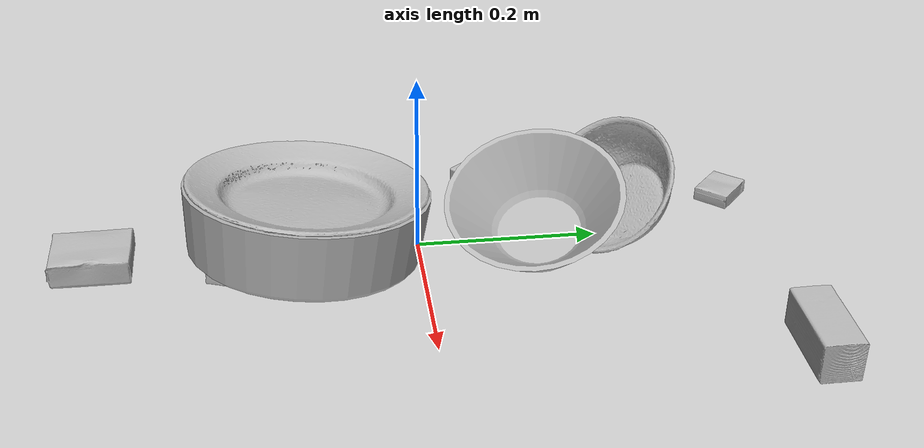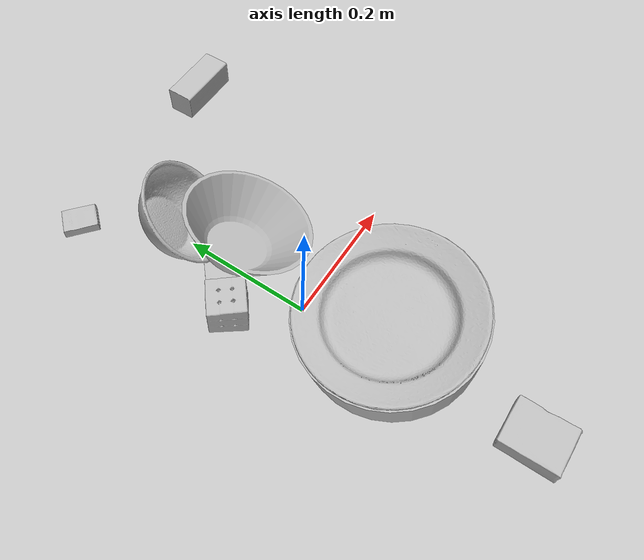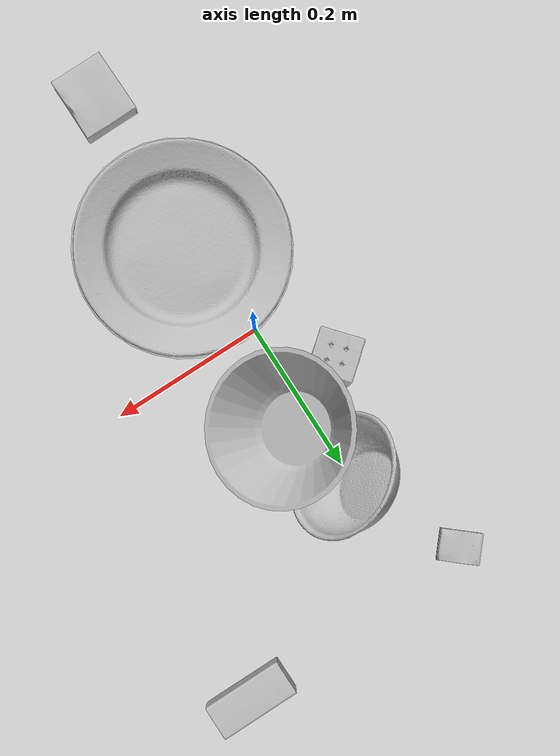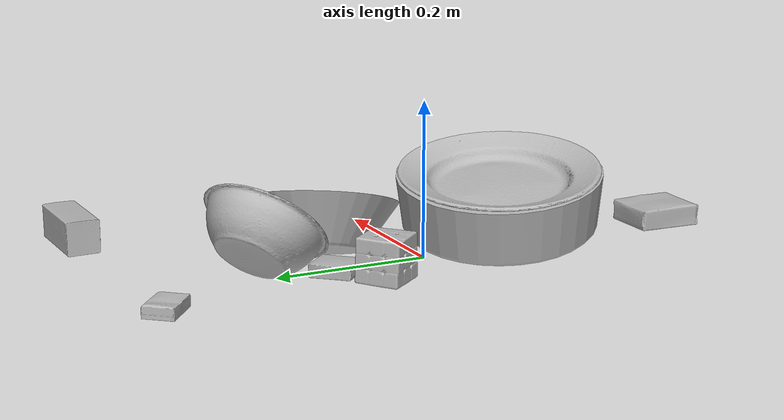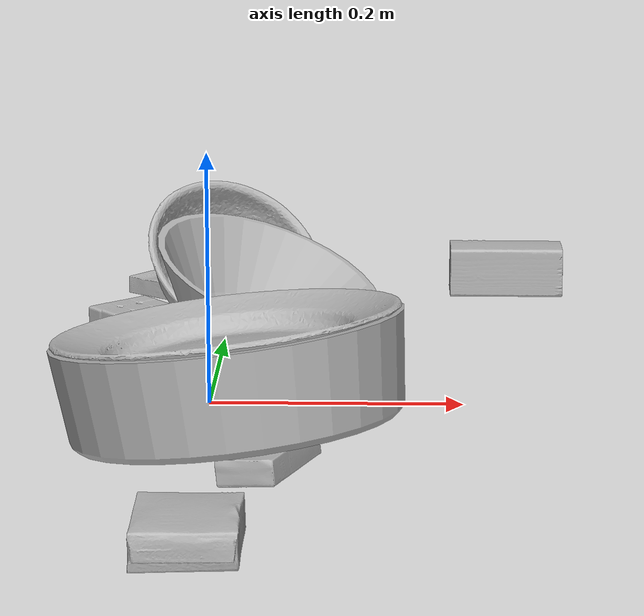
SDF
<sdf version="1.4">
  <world name="default">
    <light name="light1" type="point">
      <pose>0 0 1 0 0 0</pose>
      <diffuse>3 3 3 1</diffuse>
      <specular>3 3 3 1</specular>
    </light>
    <light name="light2" type="point">
      <pose>0 0.5 2 0 0 0</pose>
      <diffuse>1 1 1 1</diffuse>
      <specular>1 1 1 1</specular>
    </light>
    <light name="light3" type="point">
      <pose>0 0.5 2 0 0 0</pose>
      <diffuse>3 3 3 1</diffuse>
      <specular>3 3 3 1</specular>
    </light>
    <scene>
      <ambient>0.7 0.7 0.7</ambient>
    </scene>
    <model name="box1">
      <link name="link_box1">
        <collision name="default">
          <geometry>
            <mesh>
              <uri>model://cracker_box/collision_meshes/collision.obj</uri>
              <scale>0.25 0.25 0.25</scale>
            </mesh>
          </geometry>
          <surface>
            <friction>
              <ode>
                <mu>0.5</mu>
                <mu2>0.5</mu2>
              </ode>
            </friction>
          <contact>
        <ode>
            <max_vel>0</max_vel>
            <min_depth>0.0001</min_depth>
            <kp>1e8</kp>
        </ode>
    </contact></surface>
        </collision>
        <visual name="default">
          <geometry>
            <mesh>
              <uri>model://cracker_box/visual_meshes/visual.dae</uri>
              <scale>0.25 0.25 0.25</scale>
            </mesh>
          </geometry>
        </visual>
        <inertial>
          <mass>0.050503700971603394</mass>
          <pose>0.0002366037224419415 6.358561950037256e-05 -0.0004257383698131889 -0.00031620760376762643 -0.011106489600284392 0.0025467959332018085</pose>
          <inertia>
            <ixx>8.02868e-06</ixx>
            <iyy>1.3256925e-05</iyy>
            <izz>1.8918852e-05</izz>
            <ixy>0</ixy>
            <ixz>0</ixz>
            <iyz>0</iyz>
          </inertia>
        </inertial>
      </link>
      <pose>-0.06681021302938461 0.3645363748073578 0.009120449423789978 -0.011788037107565742 -0.00736724145976999 -0.7159972240474309</pose>
    </model>
    <model name="box11">
      <link name="link_box11">
        <collision name="default">
          <geometry>
            <mesh>
              <uri>model://rubiks_cube/collision_meshes/collision.obj</uri>
              <scale>1.0 1.0 1.0</scale>
            </mesh>
          </geometry>
          <surface>
            <friction>
              <ode>
                <mu>0.5</mu>
                <mu2>0.5</mu2>
              </ode>
            </friction>
          <contact>
        <ode>
            <max_vel>0</max_vel>
            <min_depth>0.0001</min_depth>
            <kp>1e8</kp>
        </ode>
    </contact></surface>
        </collision>
        <visual name="default">
          <geometry>
            <mesh>
              <uri>model://rubiks_cube/visual_meshes/visual.dae</uri>
              <scale>1.0 1.0 1.0</scale>
            </mesh>
          </geometry>
        </visual>
        <inertial>
          <mass>0.15071694552898407</mass>
          <pose>2.6721043468569405e-05 5.2569666877388954e-05 -7.264316082000732e-06 -0.05467297119259296 -0.09814009057422186 -0.034453654418704155</pose>
          <inertia>
            <ixx>8.328124e-05</ixx>
            <iyy>8.2892846e-05</iyy>
            <izz>8.397135e-05</izz>
            <ixy>0</ixy>
            <ixz>0</ixz>
            <iyz>0</iyz>
          </inertia>
        </inertial>
      </link>
      <pose>-0.06436926871538162 0.08385811746120453 0.02867894619703293 -3.2129893400840387e-06 -1.2660951114525364e-06 -0.8830487721860427</pose>
    </model>
    <model name="box2">
      <link name="link_box2">
        <collision name="default">
          <geometry>
            <mesh>
              <uri>model://gelatin_box/collision_meshes/collision.obj</uri>
              <scale>1.0 1.0 1.0</scale>
            </mesh>
          </geometry>
          <surface>
            <friction>
              <ode>
                <mu>0.5</mu>
                <mu2>0.5</mu2>
              </ode>
            </friction>
          <contact>
        <ode>
            <max_vel>0</max_vel>
            <min_depth>0.0001</min_depth>
            <kp>1e8</kp>
        </ode>
    </contact></surface>
        </collision>
        <visual name="default">
          <geometry>
            <mesh>
              <uri>model://gelatin_box/visual_meshes/visual.dae</uri>
              <scale>1.0 1.0 1.0</scale>
            </mesh>
          </geometry>
        </visual>
        <inertial>
          <mass>0.24173277616500854</mass>
          <pose>0.00043196187471039593 0.00011156872642459348 -0.0003640321083366871 -0.001050371835386973 -0.004755817297158009 0.016440553881960234</pose>
          <inertia>
            <ixx>0.00017064363</ixx>
            <iyy>0.00012188985</iyy>
            <izz>0.00025975762</izz>
            <ixy>0</ixy>
            <ixz>0</ixz>
            <iyz>0</iyz>
          </inertia>
        </inertial>
      </link>
      <pose>0.010198153555393219 -0.3552555739879608 0.015168314799666405 0.005596413859198143 -0.007303415423113456 0.00012185431095656474</pose>
    </model>
    <model name="box21">
      <link name="link_box21">
        <collision name="default">
          <geometry>
            <mesh>
              <uri>model://wood_block/collision_meshes/collision.obj</uri>
              <scale>0.5 0.5 0.5</scale>
            </mesh>
          </geometry>
          <surface>
            <friction>
              <ode>
                <mu>0.5</mu>
                <mu2>0.5</mu2>
              </ode>
            </friction>
          <contact>
        <ode>
            <max_vel>0</max_vel>
            <min_depth>0.0001</min_depth>
            <kp>1e8</kp>
        </ode>
    </contact></surface>
        </collision>
        <visual name="default">
          <geometry>
            <mesh>
              <uri>model://wood_block/visual_meshes/visual.dae</uri>
              <scale>0.5 0.5 0.5</scale>
            </mesh>
          </geometry>
        </visual>
        <inertial>
          <mass>0.16252566874027252</mass>
          <pose>-2.906657982748584e-06 -0.000285404734313488 0.00013204291462898254 -0.05220975528683206 -0.005192696037335319 -0.006861378846526553</pose>
          <inertia>
            <ixx>5.437098e-05</ixx>
            <iyy>0.00017175796</iyy>
            <izz>0.00017111548</izz>
            <ixy>0</ixy>
            <ixz>0</ixz>
            <iyz>0</iyz>
          </inertia>
        </inertial>
      </link>
      <pose>0.2483074963092804 0.37784314155578613 0.022629261016845703 -0.005208578215063838 0.005718712781045799 0.004855656268791771</pose>
    </model>
    <model name="box3">
      <link name="link_box3">
        <collision name="default">
          <geometry>
            <mesh>
              <uri>model://pudding_box/collision_meshes/collision.obj</uri>
              <scale>0.5 0.5 0.5</scale>
            </mesh>
          </geometry>
          <surface>
            <friction>
              <ode>
                <mu>0.5</mu>
                <mu2>0.5</mu2>
              </ode>
            </friction>
          <contact>
        <ode>
            <max_vel>0</max_vel>
            <min_depth>0.0001</min_depth>
            <kp>1e8</kp>
        </ode>
    </contact></surface>
        </collision>
        <visual name="default">
          <geometry>
            <mesh>
              <uri>model://pudding_box/visual_meshes/visual.dae</uri>
              <scale>0.5 0.5 0.5</scale>
            </mesh>
          </geometry>
        </visual>
        <inertial>
          <mass>0.05576644837856293</mass>
          <pose>0.00024474109522998333 0.0004033942532259971 -0.0002594413817860186 0.005213101792545572 -0.006603798718575614 0.020079825159656634</pose>
          <inertia>
            <ixx>1.5760277e-05</ixx>
            <iyy>1.0603625e-05</iyy>
            <izz>2.3274164e-05</izz>
            <ixy>0</ixy>
            <ixz>0</ixz>
            <iyz>0</iyz>
          </inertia>
        </inertial>
      </link>
      <pose>-0.021519610658288002 0.13040930032730103 0.010605394840240479 -0.0383036354054016 -0.0008952082371407994 -0.826988362955595</pose>
    </model>
    <model name="box31">
      <link name="link_box31">
        <collision name="default">
          <geometry>
            <mesh>
              <uri>model://sugar_box/collision_meshes/collision.obj</uri>
              <scale>0.5 0.5 0.5</scale>
            </mesh>
          </geometry>
          <surface>
            <friction>
              <ode>
                <mu>0.5</mu>
                <mu2>0.5</mu2>
              </ode>
            </friction>
          <contact>
        <ode>
            <max_vel>0</max_vel>
            <min_depth>0.0001</min_depth>
            <kp>1e8</kp>
        </ode>
    </contact></surface>
        </collision>
        <visual name="default">
          <geometry>
            <mesh>
              <uri>model://sugar_box/visual_meshes/visual.dae</uri>
              <scale>0.5 0.5 0.5</scale>
            </mesh>
          </geometry>
        </visual>
        <inertial>
          <mass>0.1100529357790947</mass>
          <pose>0.0005171863595023751 1.924554817378521e-05 -0.00018182402709499002 -0.00040462641680988955 0.001050663522315131 0.0026153787888612426</pose>
          <inertia>
            <ixx>2.2923945e-05</ixx>
            <iyy>7.409492e-05</iyy>
            <izz>8.870046e-05</izz>
            <ixy>0</ixy>
            <ixz>0</ixz>
            <iyz>0</iyz>
          </inertia>
        </inertial>
      </link>
      <pose>0.05539430305361748 -0.1836909055709839 0.012731638737022877 -0.11823937195629561 -0.00040675350939673116 1.2075622430475101</pose>
    </model>
    <model name="plate1">
      <link name="link_plate1">
        <collision name="default">
          <geometry>
            <mesh>
              <uri>model://pan_tefal/collision_meshes/collision.obj</uri>
              <scale>1.0 1.0 1.0</scale>
            </mesh>
          </geometry>
          <surface>
            <friction>
              <ode>
                <mu>0.5</mu>
                <mu2>0.5</mu2>
              </ode>
            </friction>
          <contact>
        <ode>
            <max_vel>0</max_vel>
            <min_depth>0.0001</min_depth>
            <kp>1e8</kp>
        </ode>
    </contact></surface>
        </collision>
        <visual name="default">
          <geometry>
            <mesh>
              <uri>model://pan_tefal/visual_meshes/visual.dae</uri>
              <scale>1.0 1.0 1.0</scale>
            </mesh>
          </geometry>
        </visual>
        <inertial>
          <mass>1.207520604133606</mass>
          <pose>-0.00018002177239395678 3.2792409911053255e-05 -0.00851493701338768 0.0008190288495961148 -0.0003301407263612178 -0.3318541272495768</pose>
          <inertia>
            <ixx>0.008335457</ixx>
            <iyy>0.008389196</iyy>
            <izz>0.015343971</izz>
            <ixy>0</ixy>
            <ixz>0</ixz>
            <iyz>0</iyz>
          </inertia>
        </inertial>
      </link>
      <pose>0.026341328397393227 -0.12337277084589005 0.055141061544418335 0.10084548080939915 -0.12055506071126731 -1.3624034779569092</pose>
    </model>
    <model name="bowl1">
      <link name="link_bowl1">
        <collision name="default">
          <geometry>
            <mesh>
              <uri>model://bowl/collision_meshes/collision.obj</uri>
              <scale>1.0 1.0 1.0</scale>
            </mesh>
          </geometry>
          <surface>
            <friction>
              <ode>
                <mu>0.5</mu>
                <mu2>0.5</mu2>
              </ode>
            </friction>
          <contact>
        <ode>
            <max_vel>0</max_vel>
            <min_depth>0.0001</min_depth>
            <kp>1e8</kp>
        </ode>
    </contact></surface>
        </collision>
        <visual name="default">
          <geometry>
            <mesh>
              <uri>model://bowl/visual_meshes/visual.dae</uri>
              <scale>1.0 1.0 1.0</scale>
            </mesh>
          </geometry>
        </visual>
        <inertial>
          <mass>0.09256309270858765</mass>
          <pose>0.00020445158588699996 -0.001030202372930944 -0.0008042642730288208 -0.015764073075752352 0.01454679669645375 0.7140412125775129</pose>
          <inertia>
            <ixx>0.00021262471</ixx>
            <iyy>0.00020787389</iyy>
            <izz>0.00035770793</izz>
            <ixy>0</ixy>
            <ixz>0</ixz>
            <iyz>0</iyz>
          </inertia>
        </inertial>
      </link>
      <pose>0.00013513071462512016 0.2231164574623108 0.05234907940030098 -0.15880806073088383 0.7957542677135833 -1.2015635740934791</pose>
    </model>
    <model name="plate2">
      <link name="link_plate2">
        <collision name="default">
          <geometry>
            <mesh>
              <uri>model://plate/collision_meshes/collision.obj</uri>
              <scale>1.0 1.0 1.0</scale>
            </mesh>
          </geometry>
          <surface>
            <friction>
              <ode>
                <mu>0.5</mu>
                <mu2>0.5</mu2>
              </ode>
            </friction>
          <contact>
        <ode>
            <max_vel>0</max_vel>
            <min_depth>0.0001</min_depth>
            <kp>1e8</kp>
        </ode>
    </contact></surface>
        </collision>
        <visual name="default">
          <geometry>
            <mesh>
              <uri>model://plate/visual_meshes/visual.dae</uri>
              <scale>1.0 1.0 1.0</scale>
            </mesh>
          </geometry>
        </visual>
        <inertial>
          <mass>0.22150008380413055</mass>
          <pose>-0.0006044640904292464 0.0002782581141218543 -0.0010561984963715076 0.0022187839711676756 -0.00322547471274247 0.4526095389577293</pose>
          <inertia>
            <ixx>0.0010361817</ixx>
            <iyy>0.0010262709</iyy>
            <izz>0.0020266173</izz>
            <ixy>0</ixy>
            <ixz>0</ixz>
            <iyz>0</iyz>
          </inertia>
        </inertial>
      </link>
      <pose>0.02275257371366024 -0.12058503180742264 0.08600543439388275 -0.062132968205557644 0.1451935728059358 2.089932910772412</pose>
    </model>
    <model name="bowl2">
      <link name="link_bowl2">
        <collision name="default">
          <geometry>
            <mesh>
              <uri>model://bowl_a/collision_meshes/collision.obj</uri>
              <scale>1.0 1.0 1.0</scale>
            </mesh>
          </geometry>
          <surface>
            <friction>
              <ode>
                <mu>0.5</mu>
                <mu2>0.5</mu2>
              </ode>
            </friction>
          <contact>
        <ode>
            <max_vel>0</max_vel>
            <min_depth>0.0001</min_depth>
            <kp>1e8</kp>
        </ode>
    </contact></surface>
        </collision>
        <visual name="default">
          <geometry>
            <mesh>
              <uri>model://bowl_a/visual_meshes/visual.dae</uri>
              <scale>1.0 1.0 1.0</scale>
            </mesh>
          </geometry>
        </visual>
        <inertial>
          <mass>0.4869906008243561</mass>
          <pose>0.0002786735713016242 4.731232547783293e-05 -0.001376529224216938 -0.0009805388639875933 -0.0010938169956893674 -0.19123322132810686</pose>
          <inertia>
            <ixx>0.0013864844</ixx>
            <iyy>0.0013949967</iyy>
            <izz>0.0024659163</izz>
            <ixy>0</ixy>
            <ixz>0</ixz>
            <iyz>0</iyz>
          </inertia>
        </inertial>
      </link>
      <pose>0.03348749876022339 0.12711931765079498 0.04942319914698601 0.03195702743886032 -0.3908017032339853 2.540917576463038</pose>
    </model>
  <physics type="ode">
      <max_contacts>50</max_contacts>
      <ode>
        <solver>
          <type>quick</type>
          <iters>75</iters>
        </solver>
        <constraints>
          <contact_max_correcting_vel>0</contact_max_correcting_vel>
          <contact_surface_layer>0</contact_surface_layer>
        </constraints>
      </ode>
    </physics></world>
</sdf>
